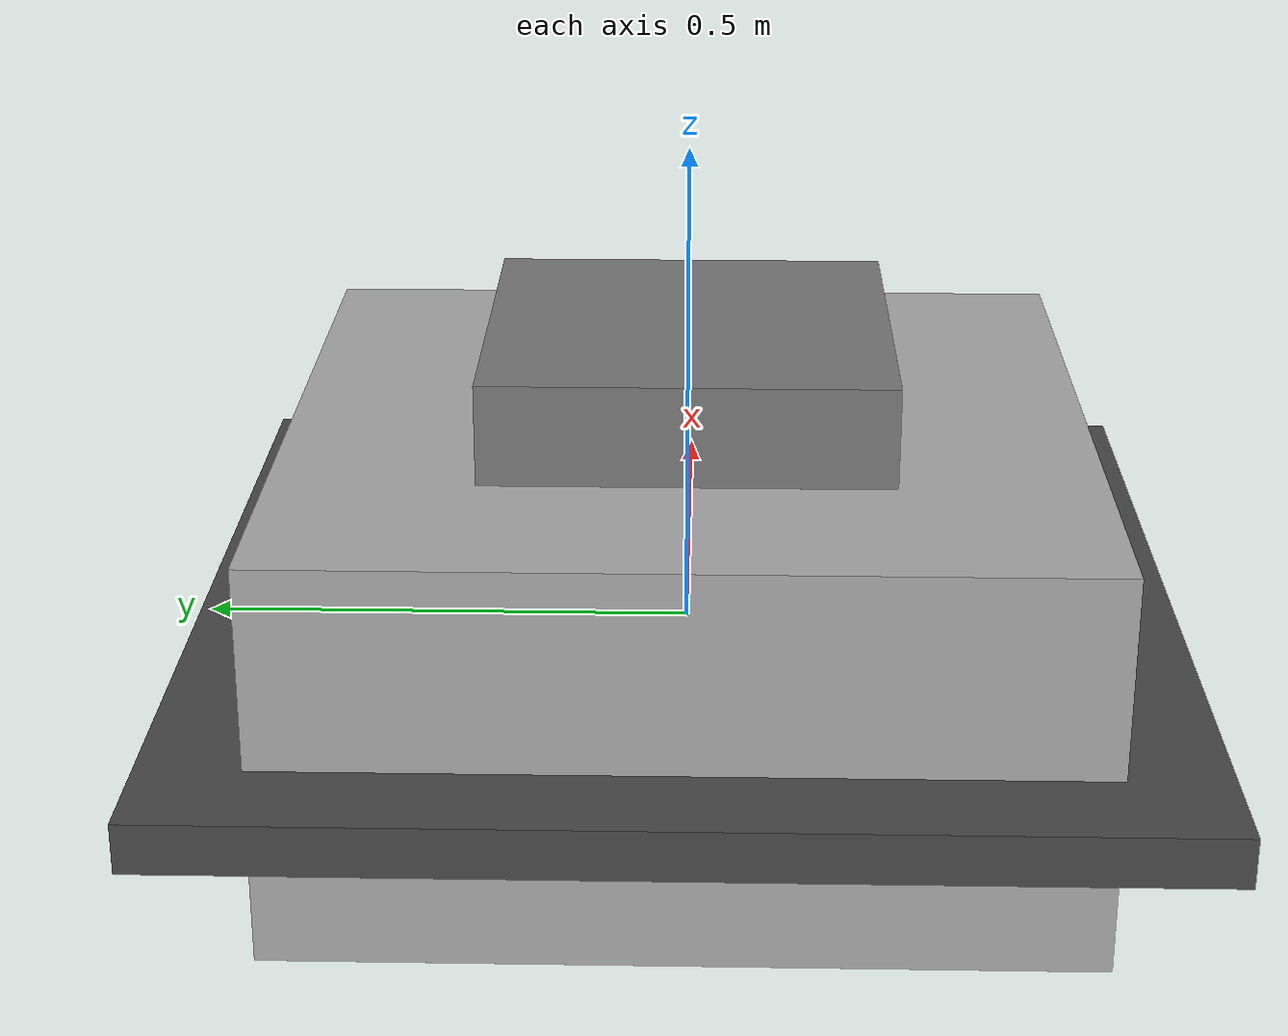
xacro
<?xml version="1.0"?>
<robot xmlns:xacro="http://www.ros.org/wiki/xacro" name="da_vinci_robot">

  <xacro:property name="PI" value="3.1415926535897931"/>

  <!-- Base platform for the entire setup -->
  <link name="platform">
    <visual>
      <geometry>
        <box size="1.0 1.0 0.05"/>
      </geometry>
      <material name="dark_grey">
        <color rgba="0.3 0.3 0.3 1"/>
      </material>
    </visual>
    <collision>
      <geometry>
        <box size="1.0 1.0 0.05"/>
      </geometry>
    </collision>
    <inertial>
      <mass value="20.0"/>
      <inertia ixx="1.67" ixy="0" ixz="0" iyy="1.67" iyz="0" izz="1.67"/>
    </inertial>
  </link>

  <!-- Support structure -->
  <joint name="support_joint" type="fixed">
    <parent link="platform"/>
    <child link="support_structure"/>
    <origin xyz="0 0 0.025" rpy="0 0 0"/>
  </joint>

  <link name="support_structure">
    <visual>
      <geometry>
        <box size="0.8 0.8 0.4"/>
      </geometry>
      <material name="light_grey">
        <color rgba="0.7 0.7 0.7 1"/>
      </material>
    </visual>
    <collision>
      <geometry>
        <box size="0.8 0.8 0.4"/>
      </geometry>
    </collision>
    <inertial>
      <mass value="15.0"/>
      <inertia ixx="0.4" ixy="0" ixz="0" iyy="0.4" iyz="0" izz="0.4"/>
    </inertial>
  </link>

  <!-- Base link (mounted on support structure) -->
  <joint name="base_joint" type="fixed">
    <parent link="support_structure"/>
    <child link="base_link"/>
    <origin xyz="0 0 0.25" rpy="0 0 0"/>
  </joint>

  <link name="base_link">
    <visual>
      <geometry>
        <box size="0.4 0.4 0.1"/>
      </geometry>
      <material name="grey">
        <color rgba="0.5 0.5 0.5 1"/>
      </material>
    </visual>
    <collision>
      <geometry>
        <box size="0.4 0.4 0.1"/>
      </geometry>
    </collision>
    <inertial>
      <mass value="5.0"/>
      <inertia ixx="0.04" ixy="0" ixz="0" iyy="0.04" iyz="0" izz="0.04"/>
    </inertial>
  </link>

  <!-- Tissue/Phantom platform -->
  <joint name="tissue_platform_joint" type="fixed">
    <parent link="platform"/>
    <child link="tissue_platform"/>
    <origin xyz="0 0 0.025" rpy="0 0 0"/>
  </joint>

  <link name="tissue_platform">
    <visual>
      <geometry>
        <box size="0.3 0.3 0.02"/>
      </geometry>
      <material name="white">
        <color rgba="0.9 0.9 0.9 1"/>
      </material>
    </visual>
    <collision>
      <geometry>
        <box size="0.3 0.3 0.02"/>
      </geometry>
    </collision>
    <inertial>
      <mass value="1.0"/>
      <inertia ixx="0.002" ixy="0" ixz="0" iyy="0.002" iyz="0" izz="0.002"/>
    </inertial>
  </link>

  <!-- Tissue/Phantom -->
  <joint name="tissue_joint" type="fixed">
    <parent link="tissue_platform"/>
    <child link="tissue"/>
    <origin xyz="0 0 0.01" rpy="0 0 0"/>
  </joint>

  <link name="tissue">
    <visual>
      <geometry>
        <box size="0.25 0.25 0.01"/>
      </geometry>
      <material name="flesh">
        <color rgba="1 0.8 0.6 1"/>
      </material>
    </visual>
    <collision>
      <geometry>
        <box size="0.25 0.25 0.01"/>
      </geometry>
    </collision>
    <inertial>
      <mass value="0.1"/>
      <inertia ixx="0.0001" ixy="0" ixz="0" iyy="0.0001" iyz="0" izz="0.0001"/>
    </inertial>
  </link>

  <!-- Rest of the robot components (arms, cameras, etc.) remain the same -->
  <!-- ... (previous arm and camera definitions) ... -->

</robot>
